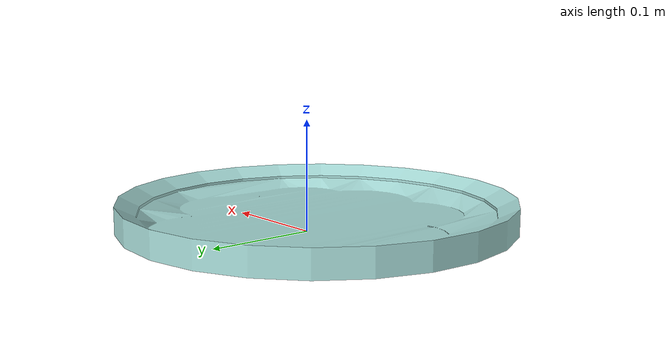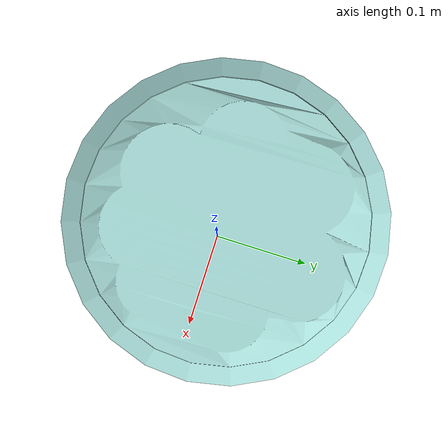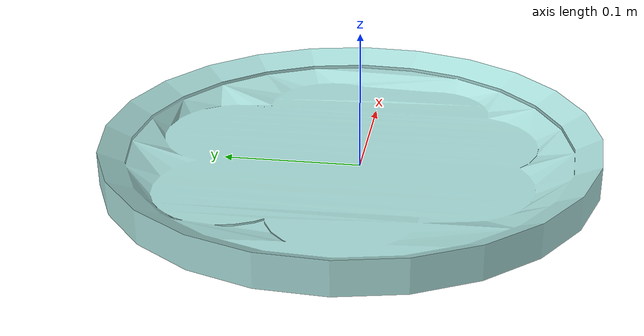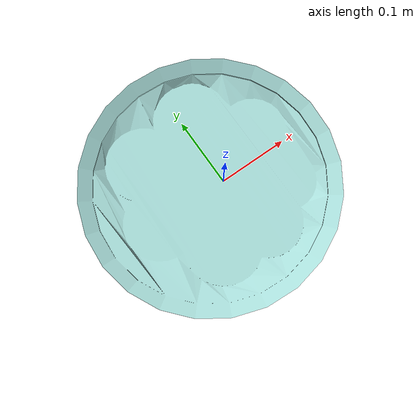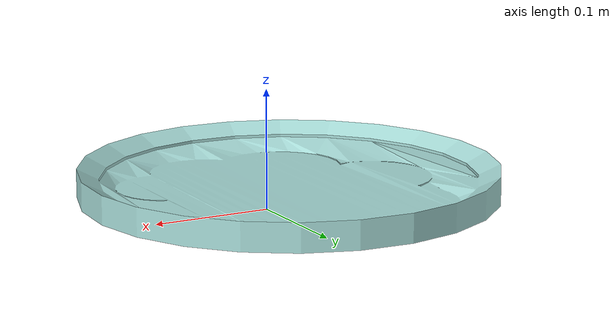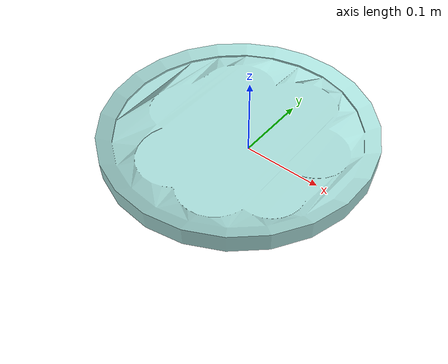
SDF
<?xml version='1.0'?>
<sdf version='1.6'>
  <model name='tray'>
    <link name='link_13'>
        <visual name='visual'>
        <pose frame=''>0 0 0 0 -0 0</pose>
        <geometry>
          <mesh>
            <uri>model://tray/meshes/tray.dae</uri>
            <scale>1 1 1</scale>
          </mesh>
        </geometry>
        <material>
          <lighting>1</lighting>
          <script>
            <uri>file://media/materials/scripts/gazebo.material</uri>
            <name>Gazebo/Grey</name>
          </script>
          <ambient>0.662 0.87 0.854 1</ambient>
          <diffuse>0.662 0.87 0.854 1</diffuse>
          <specular>0.01 0.01 0.01 1</specular>
          <emissive>0 0 0 1</emissive>
          <shader type='vertex'>
            <normal_map>__default__</normal_map>
          </shader>
        </material>
        <cast_shadows>1</cast_shadows>
        <transparency>0</transparency>
      </visual>
      <collision name='collision'>
        <laser_retro>0</laser_retro>
        <max_contacts>10</max_contacts>
        <pose frame=''>0 0 0 0 -0 0</pose>
        <geometry>
          <mesh>
            <uri>model://tray/meshes/tray.dae</uri>
            <scale>1 1 1</scale>
          </mesh>
        </geometry>
       </collision>
    </link>
    <static>1</static>
    <allow_auto_disable>1</allow_auto_disable>
  </model>
</sdf>
